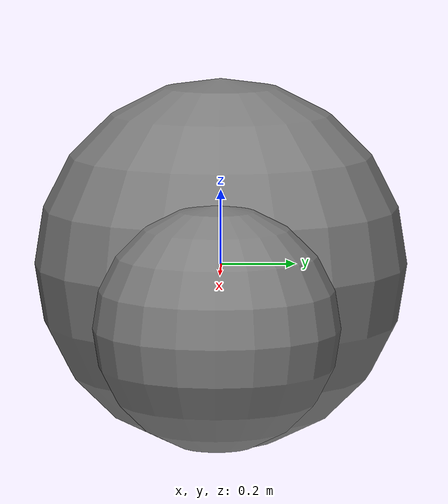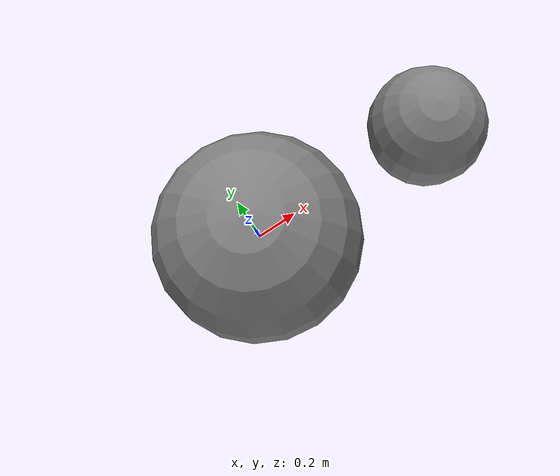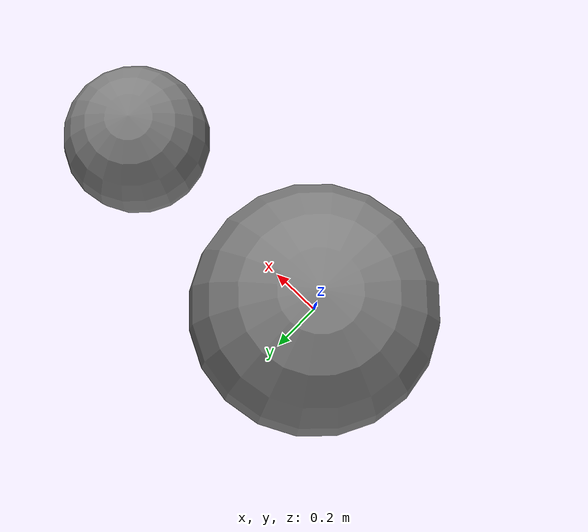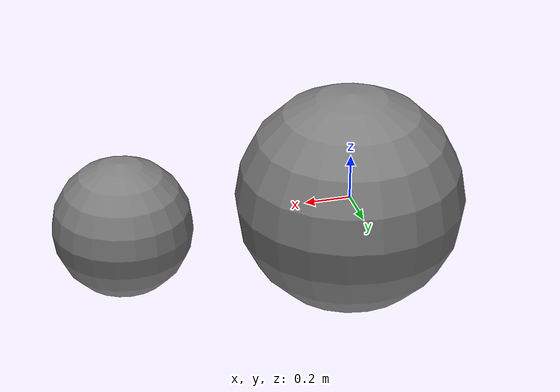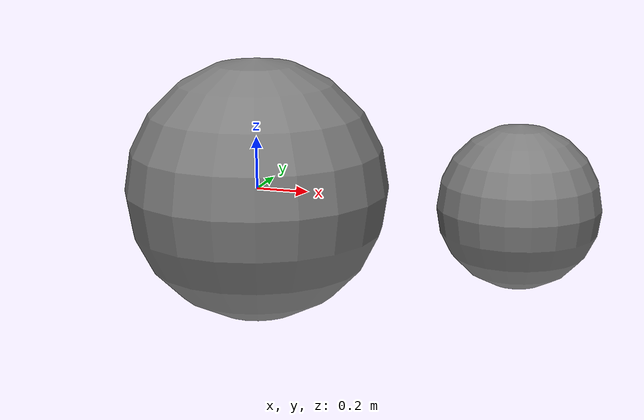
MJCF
<mujoco model="sphere_sphere_sep">
            <option gravity="0 0 0" timestep="0.001"/>
            <worldbody>
                <body name="s1" pos="0 0 0">
                    <joint type="free"/>
                    <geom type="sphere" size="0.5"/>
                </body>
                <body name="s2" pos="1.0 0 0">
                    <joint type="free"/>
                    <geom type="sphere" size="0.3"/>
                </body>
            </worldbody>
        </mujoco>
